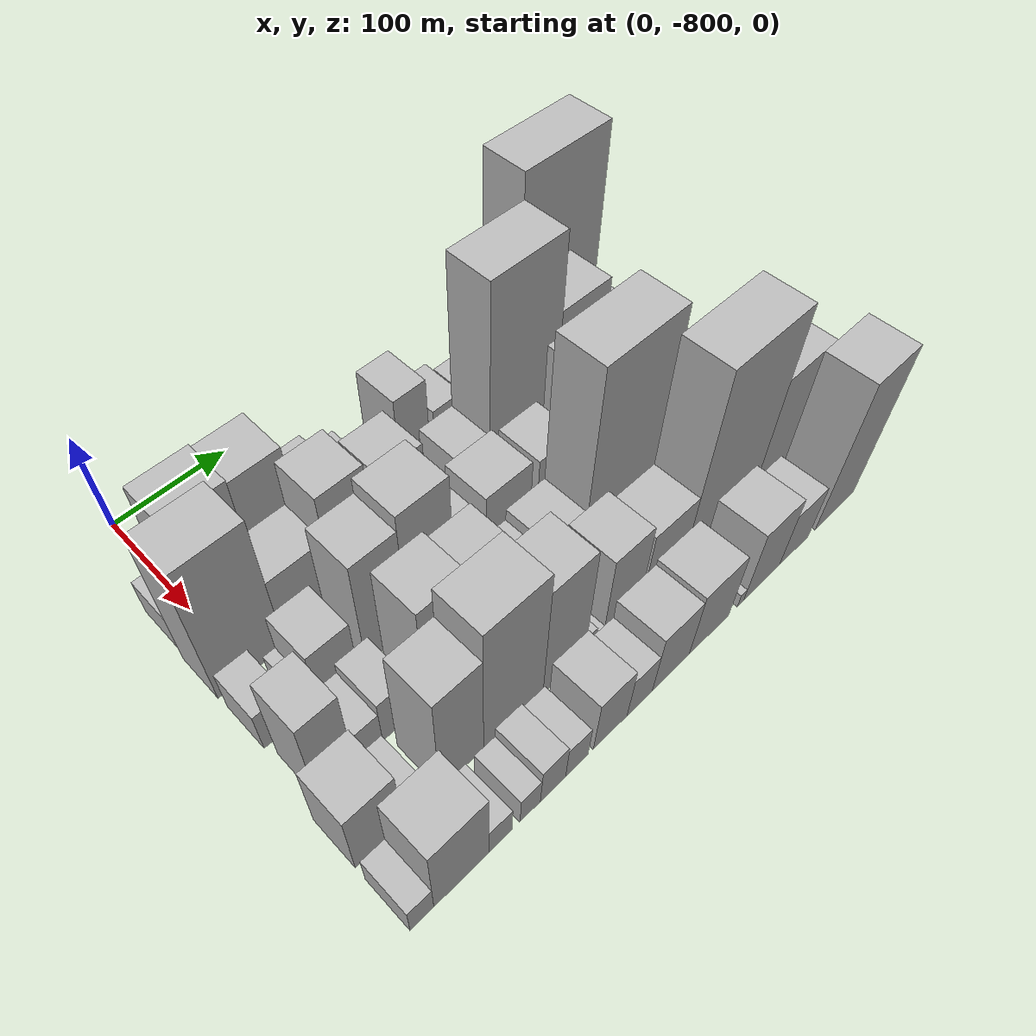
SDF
<sdf version="1.6">
 <world name="default">
  <model name="building_1">
   <static>1</static>
   <pose>100.0000 -812.2240 0 0.000000 0.000000 0.000000</pose>
   <link name="link">
    <pose>0 0 19.50 0 0 0</pose>
    <collision name="collision"><geometry><box><size>40.0000 21.5519 39.0000</size></box></geometry></collision>
    <visual name="visual">
     <cast_shadows>0</cast_shadows>
     <geometry><box><size>40.0000 21.5519 39.0000</size></box></geometry>
     <material>
      <script>
       <uri>model://HANNAS_wall/materials/scripts</uri>
       <uri>model://HANNAS_wall/materials/textures</uri>
       <name>vrc/HANNAS_wall</name>
      </script>
     </material>
    </visual>
   </link>
  </model>
  <model name="building_2">
   <static>1</static>
   <pose>100.0000 -777.5045 0 0.000000 0.000000 0.000000</pose>
   <link name="link">
    <pose>0 0 63.00 0 0 0</pose>
    <collision name="collision"><geometry><box><size>40.0000 47.8872 126.0000</size></box></geometry></collision>
    <visual name="visual">
     <cast_shadows>0</cast_shadows>
     <geometry><box><size>40.0000 47.8872 126.0000</size></box></geometry>
     <material>
      <script>
       <uri>model://HANNAS_wall/materials/scripts</uri>
       <uri>model://HANNAS_wall/materials/textures</uri>
       <name>vrc/HANNAS_wall</name>
      </script>
     </material>
    </visual>
   </link>
  </model>
  <model name="building_3">
   <static>1</static>
   <pose>100.0000 -732.9101 0 0.000000 0.000000 0.000000</pose>
   <link name="link">
    <pose>0 0 61.50 0 0 0</pose>
    <collision name="collision"><geometry><box><size>40.0000 41.3015 123.0000</size></box></geometry></collision>
    <visual name="visual">
     <cast_shadows>0</cast_shadows>
     <geometry><box><size>40.0000 41.3015 123.0000</size></box></geometry>
     <material>
      <script>
       <uri>model://HANNAS_wall/materials/scripts</uri>
       <uri>model://HANNAS_wall/materials/textures</uri>
       <name>vrc/HANNAS_wall</name>
      </script>
     </material>
    </visual>
   </link>
  </model>
  <model name="building_4">
   <static>1</static>
   <pose>100.0000 -693.9835 0 0.000000 0.000000 0.000000</pose>
   <link name="link">
    <pose>0 0 34.50 0 0 0</pose>
    <collision name="collision"><geometry><box><size>40.0000 36.5518 69.0000</size></box></geometry></collision>
    <visual name="visual">
     <cast_shadows>0</cast_shadows>
     <geometry><box><size>40.0000 36.5518 69.0000</size></box></geometry>
     <material>
      <script>
       <uri>model://HANNAS_wall/materials/scripts</uri>
       <uri>model://HANNAS_wall/materials/textures</uri>
       <name>vrc/HANNAS_wall</name>
      </script>
     </material>
    </visual>
   </link>
  </model>
  <model name="building_5">
   <static>1</static>
   <pose>100.0000 -662.1892 0 0.000000 0.000000 0.000000</pose>
   <link name="link">
    <pose>0 0 25.50 0 0 0</pose>
    <collision name="collision"><geometry><box><size>40.0000 27.0368 51.0000</size></box></geometry></collision>
    <visual name="visual">
     <cast_shadows>0</cast_shadows>
     <geometry><box><size>40.0000 27.0368 51.0000</size></box></geometry>
     <material>
      <script>
       <uri>model://HANNAS_wall/materials/scripts</uri>
       <uri>model://HANNAS_wall/materials/textures</uri>
       <name>vrc/HANNAS_wall</name>
      </script>
     </material>
    </visual>
   </link>
  </model>
  <model name="building_6">
   <static>1</static>
   <pose>100.0000 -629.9079 0 0.000000 0.000000 0.000000</pose>
   <link name="link">
    <pose>0 0 15.00 0 0 0</pose>
    <collision name="collision"><geometry><box><size>40.0000 17.5258 30.0000</size></box></geometry></collision>
    <visual name="visual">
     <cast_shadows>0</cast_shadows>
     <geometry><box><size>40.0000 17.5258 30.0000</size></box></geometry>
     <material>
      <script>
       <uri>model://HANNAS_wall/materials/scripts</uri>
       <uri>model://HANNAS_wall/materials/textures</uri>
       <name>vrc/HANNAS_wall</name>
      </script>
     </material>
    </visual>
   </link>
  </model>
  <model name="building_7">
   <static>1</static>
   <pose>100.0000 -606.0074 0 0.000000 0.000000 0.000000</pose>
   <link name="link">
    <pose>0 0 46.50 0 0 0</pose>
    <collision name="collision"><geometry><box><size>40.0000 30.2752 93.0000</size></box></geometry></collision>
    <visual name="visual">
     <cast_shadows>0</cast_shadows>
     <geometry><box><size>40.0000 30.2752 93.0000</size></box></geometry>
     <material>
      <script>
       <uri>model://HANNAS_wall/materials/scripts</uri>
       <uri>model://HANNAS_wall/materials/textures</uri>
       <name>vrc/HANNAS_wall</name>
      </script>
     </material>
    </visual>
   </link>
  </model>
  <model name="building_8">
   <static>1</static>
   <pose>100.0000 -571.5344 0 0.000000 0.000000 0.000000</pose>
   <link name="link">
    <pose>0 0 27.00 0 0 0</pose>
    <collision name="collision"><geometry><box><size>40.0000 28.6708 54.0000</size></box></geometry></collision>
    <visual name="visual">
     <cast_shadows>0</cast_shadows>
     <geometry><box><size>40.0000 28.6708 54.0000</size></box></geometry>
     <material>
      <script>
       <uri>model://HANNAS_wall/materials/scripts</uri>
       <uri>model://HANNAS_wall/materials/textures</uri>
       <name>vrc/HANNAS_wall</name>
      </script>
     </material>
    </visual>
   </link>
  </model>
  <model name="building_9">
   <static>1</static>
   <pose>100.0000 -538.3855 0 0.000000 0.000000 0.000000</pose>
   <link name="link">
    <pose>0 0 21.00 0 0 0</pose>
    <collision name="collision"><geometry><box><size>40.0000 21.6271 42.0000</size></box></geometry></collision>
    <visual name="visual">
     <cast_shadows>0</cast_shadows>
     <geometry><box><size>40.0000 21.6271 42.0000</size></box></geometry>
     <material>
      <script>
       <uri>model://HANNAS_wall/materials/scripts</uri>
       <uri>model://HANNAS_wall/materials/textures</uri>
       <name>vrc/HANNAS_wall</name>
      </script>
     </material>
    </visual>
   </link>
  </model>
  <model name="building_10">
   <static>1</static>
   <pose>100.0000 -518.0808 0 0.000000 0.000000 0.000000</pose>
   <link name="link">
    <pose>0 0 7.50 0 0 0</pose>
    <collision name="collision"><geometry><box><size>40.0000 6.9822 15.0000</size></box></geometry></collision>
    <visual name="visual">
     <cast_shadows>0</cast_shadows>
     <geometry><box><size>40.0000 6.9822 15.0000</size></box></geometry>
     <material>
      <script>
       <uri>model://HANNAS_wall/materials/scripts</uri>
       <uri>model://HANNAS_wall/materials/textures</uri>
       <name>vrc/HANNAS_wall</name>
      </script>
     </material>
    </visual>
   </link>
  </model>
  <model name="building_11">
   <static>1</static>
   <pose>100.0000 -505.0342 0 0.000000 0.000000 0.000000</pose>
   <link name="link">
    <pose>0 0 16.50 0 0 0</pose>
    <collision name="collision"><geometry><box><size>40.0000 19.1111 33.0000</size></box></geometry></collision>
    <visual name="visual">
     <cast_shadows>0</cast_shadows>
     <geometry><box><size>40.0000 19.1111 33.0000</size></box></geometry>
     <material>
      <script>
       <uri>model://HANNAS_wall/materials/scripts</uri>
       <uri>model://HANNAS_wall/materials/textures</uri>
       <name>vrc/HANNAS_wall</name>
      </script>
     </material>
    </visual>
   </link>
  </model>
  <model name="building_12">
   <static>1</static>
   <pose>100.0000 -453.3071 0 0.000000 0.000000 0.000000</pose>
   <link name="link">
    <pose>0 0 109.50 0 0 0</pose>
    <collision name="collision"><geometry><box><size>40.0000 84.3429 219.0000</size></box></geometry></collision>
    <visual name="visual">
     <cast_shadows>0</cast_shadows>
     <geometry><box><size>40.0000 84.3429 219.0000</size></box></geometry>
     <material>
      <script>
       <uri>model://HANNAS_wall/materials/scripts</uri>
       <uri>model://HANNAS_wall/materials/textures</uri>
       <name>vrc/HANNAS_wall</name>
      </script>
     </material>
    </visual>
   </link>
  </model>
  <model name="building_13">
   <static>1</static>
   <pose>100.0000 -399.4121 0 0.000000 0.000000 0.000000</pose>
   <link name="link">
    <pose>0 0 21.00 0 0 0</pose>
    <collision name="collision"><geometry><box><size>40.0000 23.4472 42.0000</size></box></geometry></collision>
    <visual name="visual">
     <cast_shadows>0</cast_shadows>
     <geometry><box><size>40.0000 23.4472 42.0000</size></box></geometry>
     <material>
      <script>
       <uri>model://HANNAS_wall/materials/scripts</uri>
       <uri>model://HANNAS_wall/materials/textures</uri>
       <name>vrc/HANNAS_wall</name>
      </script>
     </material>
    </visual>
   </link>
  </model>
  <model name="building_47">
   <static>1</static>
   <pose>149.0000 -797.3825 0 0.000000 0.000000 0.000000</pose>
   <link name="link">
    <pose>0 0 75.00 0 0 0</pose>
    <collision name="collision"><geometry><box><size>40.0000 55.2350 150.0000</size></box></geometry></collision>
    <visual name="visual">
     <cast_shadows>0</cast_shadows>
     <geometry><box><size>40.0000 55.2350 150.0000</size></box></geometry>
     <material>
      <script>
       <uri>model://HANNAS_wall/materials/scripts</uri>
       <uri>model://HANNAS_wall/materials/textures</uri>
       <name>vrc/HANNAS_wall</name>
      </script>
     </material>
    </visual>
   </link>
  </model>
  <model name="building_48">
   <static>1</static>
   <pose>149.0000 -746.6965 0 0.000000 0.000000 0.000000</pose>
   <link name="link">
    <pose>0 0 40.50 0 0 0</pose>
    <collision name="collision"><geometry><box><size>40.0000 46.1370 81.0000</size></box></geometry></collision>
    <visual name="visual">
     <cast_shadows>0</cast_shadows>
     <geometry><box><size>40.0000 46.1370 81.0000</size></box></geometry>
     <material>
      <script>
       <uri>model://HANNAS_wall/materials/scripts</uri>
       <uri>model://HANNAS_wall/materials/textures</uri>
       <name>vrc/HANNAS_wall</name>
      </script>
     </material>
    </visual>
   </link>
  </model>
  <model name="building_49">
   <static>1</static>
   <pose>149.0000 -704.4739 0 0.000000 0.000000 0.000000</pose>
   <link name="link">
    <pose>0 0 63.00 0 0 0</pose>
    <collision name="collision"><geometry><box><size>40.0000 38.3083 126.0000</size></box></geometry></collision>
    <visual name="visual">
     <cast_shadows>0</cast_shadows>
     <geometry><box><size>40.0000 38.3083 126.0000</size></box></geometry>
     <material>
      <script>
       <uri>model://HANNAS_wall/materials/scripts</uri>
       <uri>model://HANNAS_wall/materials/textures</uri>
       <name>vrc/HANNAS_wall</name>
      </script>
     </material>
    </visual>
   </link>
  </model>
  <model name="building_50">
   <static>1</static>
   <pose>149.0000 -656.1858 0 0.000000 0.000000 0.000000</pose>
   <link name="link">
    <pose>0 0 52.50 0 0 0</pose>
    <collision name="collision"><geometry><box><size>40.0000 38.2681 105.0000</size></box></geometry></collision>
    <visual name="visual">
     <cast_shadows>0</cast_shadows>
     <geometry><box><size>40.0000 38.2681 105.0000</size></box></geometry>
     <material>
      <script>
       <uri>model://HANNAS_wall/materials/scripts</uri>
       <uri>model://HANNAS_wall/materials/textures</uri>
       <name>vrc/HANNAS_wall</name>
      </script>
     </material>
    </visual>
   </link>
  </model>
  <model name="building_51">
   <static>1</static>
   <pose>149.0000 -631.1028 0 0.000000 0.000000 0.000000</pose>
   <link name="link">
    <pose>0 0 13.50 0 0 0</pose>
    <collision name="collision"><geometry><box><size>40.0000 11.8977 27.0000</size></box></geometry></collision>
    <visual name="visual">
     <cast_shadows>0</cast_shadows>
     <geometry><box><size>40.0000 11.8977 27.0000</size></box></geometry>
     <material>
      <script>
       <uri>model://HANNAS_wall/materials/scripts</uri>
       <uri>model://HANNAS_wall/materials/textures</uri>
       <name>vrc/HANNAS_wall</name>
      </script>
     </material>
    </visual>
   </link>
  </model>
  <model name="building_52">
   <static>1</static>
   <pose>149.0000 -612.2972 0 0.000000 0.000000 0.000000</pose>
   <link name="link">
    <pose>0 0 12.00 0 0 0</pose>
    <collision name="collision"><geometry><box><size>40.0000 9.7136 24.0000</size></box></geometry></collision>
    <visual name="visual">
     <cast_shadows>0</cast_shadows>
     <geometry><box><size>40.0000 9.7136 24.0000</size></box></geometry>
     <material>
      <script>
       <uri>model://HANNAS_wall/materials/scripts</uri>
       <uri>model://HANNAS_wall/materials/textures</uri>
       <name>vrc/HANNAS_wall</name>
      </script>
     </material>
    </visual>
   </link>
  </model>
  <model name="building_53">
   <static>1</static>
   <pose>149.0000 -591.1544 0 0.000000 0.000000 0.000000</pose>
   <link name="link">
    <pose>0 0 30.00 0 0 0</pose>
    <collision name="collision"><geometry><box><size>40.0000 32.5719 60.0000</size></box></geometry></collision>
    <visual name="visual">
     <cast_shadows>0</cast_shadows>
     <geometry><box><size>40.0000 32.5719 60.0000</size></box></geometry>
     <material>
      <script>
       <uri>model://HANNAS_wall/materials/scripts</uri>
       <uri>model://HANNAS_wall/materials/textures</uri>
       <name>vrc/HANNAS_wall</name>
      </script>
     </material>
    </visual>
   </link>
  </model>
  <model name="building_54">
   <static>1</static>
   <pose>149.0000 -539.8538 0 0.000000 0.000000 0.000000</pose>
   <link name="link">
    <pose>0 0 103.50 0 0 0</pose>
    <collision name="collision"><geometry><box><size>40.0000 70.0292 207.0000</size></box></geometry></collision>
    <visual name="visual">
     <cast_shadows>0</cast_shadows>
     <geometry><box><size>40.0000 70.0292 207.0000</size></box></geometry>
     <material>
      <script>
       <uri>model://HANNAS_wall/materials/scripts</uri>
       <uri>model://HANNAS_wall/materials/textures</uri>
       <name>vrc/HANNAS_wall</name>
      </script>
     </material>
    </visual>
   </link>
  </model>
  <model name="building_55">
   <static>1</static>
   <pose>149.0000 -479.6750 0 0.000000 0.000000 0.000000</pose>
   <link name="link">
    <pose>0 0 67.50 0 0 0</pose>
    <collision name="collision"><geometry><box><size>40.0000 50.3284 135.0000</size></box></geometry></collision>
    <visual name="visual">
     <cast_shadows>0</cast_shadows>
     <geometry><box><size>40.0000 50.3284 135.0000</size></box></geometry>
     <material>
      <script>
       <uri>model://HANNAS_wall/materials/scripts</uri>
       <uri>model://HANNAS_wall/materials/textures</uri>
       <name>vrc/HANNAS_wall</name>
      </script>
     </material>
    </visual>
   </link>
  </model>
  <model name="building_56">
   <static>1</static>
   <pose>149.0000 -429.7371 0 0.000000 0.000000 0.000000</pose>
   <link name="link">
    <pose>0 0 37.50 0 0 0</pose>
    <collision name="collision"><geometry><box><size>40.0000 41.5474 75.0000</size></box></geometry></collision>
    <visual name="visual">
     <cast_shadows>0</cast_shadows>
     <geometry><box><size>40.0000 41.5474 75.0000</size></box></geometry>
     <material>
      <script>
       <uri>model://HANNAS_wall/materials/scripts</uri>
       <uri>model://HANNAS_wall/materials/textures</uri>
       <name>vrc/HANNAS_wall</name>
      </script>
     </material>
    </visual>
   </link>
  </model>
  <model name="building_98">
   <static>1</static>
   <pose>198.0000 -811.1327 0 0.000000 0.000000 0.000000</pose>
   <link name="link">
    <pose>0 0 22.50 0 0 0</pose>
    <collision name="collision"><geometry><box><size>40.0000 25.7346 45.0000</size></box></geometry></collision>
    <visual name="visual">
     <cast_shadows>0</cast_shadows>
     <geometry><box><size>40.0000 25.7346 45.0000</size></box></geometry>
     <material>
      <script>
       <uri>model://HANNAS_wall/materials/scripts</uri>
       <uri>model://HANNAS_wall/materials/textures</uri>
       <name>vrc/HANNAS_wall</name>
      </script>
     </material>
    </visual>
   </link>
  </model>
  <model name="building_99">
   <static>1</static>
   <pose>198.0000 -785.2999 0 0.000000 0.000000 0.000000</pose>
   <link name="link">
    <pose>0 0 12.00 0 0 0</pose>
    <collision name="collision"><geometry><box><size>40.0000 9.9310 24.0000</size></box></geometry></collision>
    <visual name="visual">
     <cast_shadows>0</cast_shadows>
     <geometry><box><size>40.0000 9.9310 24.0000</size></box></geometry>
     <material>
      <script>
       <uri>model://HANNAS_wall/materials/scripts</uri>
       <uri>model://HANNAS_wall/materials/textures</uri>
       <name>vrc/HANNAS_wall</name>
      </script>
     </material>
    </visual>
   </link>
  </model>
  <model name="building_100">
   <static>1</static>
   <pose>198.0000 -763.0754 0 0.000000 0.000000 0.000000</pose>
   <link name="link">
    <pose>0 0 31.50 0 0 0</pose>
    <collision name="collision"><geometry><box><size>40.0000 34.5180 63.0000</size></box></geometry></collision>
    <visual name="visual">
     <cast_shadows>0</cast_shadows>
     <geometry><box><size>40.0000 34.5180 63.0000</size></box></geometry>
     <material>
      <script>
       <uri>model://HANNAS_wall/materials/scripts</uri>
       <uri>model://HANNAS_wall/materials/textures</uri>
       <name>vrc/HANNAS_wall</name>
      </script>
     </material>
    </visual>
   </link>
  </model>
  <model name="building_101">
   <static>1</static>
   <pose>198.0000 -719.9070 0 0.000000 0.000000 0.000000</pose>
   <link name="link">
    <pose>0 0 60.00 0 0 0</pose>
    <collision name="collision"><geometry><box><size>40.0000 37.8187 120.0000</size></box></geometry></collision>
    <visual name="visual">
     <cast_shadows>0</cast_shadows>
     <geometry><box><size>40.0000 37.8187 120.0000</size></box></geometry>
     <material>
      <script>
       <uri>model://HANNAS_wall/materials/scripts</uri>
       <uri>model://HANNAS_wall/materials/textures</uri>
       <name>vrc/HANNAS_wall</name>
      </script>
     </material>
    </visual>
   </link>
  </model>
  <model name="building_102">
   <static>1</static>
   <pose>198.0000 -679.1900 0 0.000000 0.000000 0.000000</pose>
   <link name="link">
    <pose>0 0 67.50 0 0 0</pose>
    <collision name="collision"><geometry><box><size>40.0000 43.6154 135.0000</size></box></geometry></collision>
    <visual name="visual">
     <cast_shadows>0</cast_shadows>
     <geometry><box><size>40.0000 43.6154 135.0000</size></box></geometry>
     <material>
      <script>
       <uri>model://HANNAS_wall/materials/scripts</uri>
       <uri>model://HANNAS_wall/materials/textures</uri>
       <name>vrc/HANNAS_wall</name>
      </script>
     </material>
    </visual>
   </link>
  </model>
  <model name="building_103">
   <static>1</static>
   <pose>198.0000 -641.9225 0 0.000000 0.000000 0.000000</pose>
   <link name="link">
    <pose>0 0 30.00 0 0 0</pose>
    <collision name="collision"><geometry><box><size>40.0000 30.9196 60.0000</size></box></geometry></collision>
    <visual name="visual">
     <cast_shadows>0</cast_shadows>
     <geometry><box><size>40.0000 30.9196 60.0000</size></box></geometry>
     <material>
      <script>
       <uri>model://HANNAS_wall/materials/scripts</uri>
       <uri>model://HANNAS_wall/materials/textures</uri>
       <name>vrc/HANNAS_wall</name>
      </script>
     </material>
    </visual>
   </link>
  </model>
  <model name="building_104">
   <static>1</static>
   <pose>198.0000 -604.2804 0 0.000000 0.000000 0.000000</pose>
   <link name="link">
    <pose>0 0 40.50 0 0 0</pose>
    <collision name="collision"><geometry><box><size>40.0000 44.3646 81.0000</size></box></geometry></collision>
    <visual name="visual">
     <cast_shadows>0</cast_shadows>
     <geometry><box><size>40.0000 44.3646 81.0000</size></box></geometry>
     <material>
      <script>
       <uri>model://HANNAS_wall/materials/scripts</uri>
       <uri>model://HANNAS_wall/materials/textures</uri>
       <name>vrc/HANNAS_wall</name>
      </script>
     </material>
    </visual>
   </link>
  </model>
  <model name="building_105">
   <static>1</static>
   <pose>198.0000 -556.1057 0 0.000000 0.000000 0.000000</pose>
   <link name="link">
    <pose>0 0 37.50 0 0 0</pose>
    <collision name="collision"><geometry><box><size>40.0000 37.9849 75.0000</size></box></geometry></collision>
    <visual name="visual">
     <cast_shadows>0</cast_shadows>
     <geometry><box><size>40.0000 37.9849 75.0000</size></box></geometry>
     <material>
      <script>
       <uri>model://HANNAS_wall/materials/scripts</uri>
       <uri>model://HANNAS_wall/materials/textures</uri>
       <name>vrc/HANNAS_wall</name>
      </script>
     </material>
    </visual>
   </link>
  </model>
  <model name="building_106">
   <static>1</static>
   <pose>198.0000 -509.8618 0 0.000000 0.000000 0.000000</pose>
   <link name="link">
    <pose>0 0 63.00 0 0 0</pose>
    <collision name="collision"><geometry><box><size>40.0000 38.5027 126.0000</size></box></geometry></collision>
    <visual name="visual">
     <cast_shadows>0</cast_shadows>
     <geometry><box><size>40.0000 38.5027 126.0000</size></box></geometry>
     <material>
      <script>
       <uri>model://HANNAS_wall/materials/scripts</uri>
       <uri>model://HANNAS_wall/materials/textures</uri>
       <name>vrc/HANNAS_wall</name>
      </script>
     </material>
    </visual>
   </link>
  </model>
  <model name="building_107">
   <static>1</static>
   <pose>198.0000 -467.3563 0 0.000000 0.000000 0.000000</pose>
   <link name="link">
    <pose>0 0 43.50 0 0 0</pose>
    <collision name="collision"><geometry><box><size>40.0000 46.5084 87.0000</size></box></geometry></collision>
    <visual name="visual">
     <cast_shadows>0</cast_shadows>
     <geometry><box><size>40.0000 46.5084 87.0000</size></box></geometry>
     <material>
      <script>
       <uri>model://HANNAS_wall/materials/scripts</uri>
       <uri>model://HANNAS_wall/materials/textures</uri>
       <name>vrc/HANNAS_wall</name>
      </script>
     </material>
    </visual>
   </link>
  </model>
  <model name="building_108">
   <static>1</static>
   <pose>198.0000 -433.2044 0 0.000000 0.000000 0.000000</pose>
   <link name="link">
    <pose>0 0 19.50 0 0 0</pose>
    <collision name="collision"><geometry><box><size>40.0000 21.7954 39.0000</size></box></geometry></collision>
    <visual name="visual">
     <cast_shadows>0</cast_shadows>
     <geometry><box><size>40.0000 21.7954 39.0000</size></box></geometry>
     <material>
      <script>
       <uri>model://HANNAS_wall/materials/scripts</uri>
       <uri>model://HANNAS_wall/materials/textures</uri>
       <name>vrc/HANNAS_wall</name>
      </script>
     </material>
    </visual>
   </link>
  </model>
  <model name="building_109">
   <static>1</static>
   <pose>198.0000 -403.9069 0 0.000000 0.000000 0.000000</pose>
   <link name="link">
    <pose>0 0 30.00 0 0 0</pose>
    <collision name="collision"><geometry><box><size>40.0000 30.7995 60.0000</size></box></geometry></collision>
    <visual name="visual">
     <cast_shadows>0</cast_shadows>
     <geometry><box><size>40.0000 30.7995 60.0000</size></box></geometry>
     <material>
      <script>
       <uri>model://HANNAS_wall/materials/scripts</uri>
       <uri>model://HANNAS_wall/materials/textures</uri>
       <name>vrc/HANNAS_wall</name>
      </script>
     </material>
    </visual>
   </link>
  </model>
  <model name="building_145">
   <static>1</static>
   <pose>247.0000 -804.7592 0 0.000000 0.000000 0.000000</pose>
   <link name="link">
    <pose>0 0 49.50 0 0 0</pose>
    <collision name="collision"><geometry><box><size>40.0000 30.4817 99.0000</size></box></geometry></collision>
    <visual name="visual">
     <cast_shadows>0</cast_shadows>
     <geometry><box><size>40.0000 30.4817 99.0000</size></box></geometry>
     <material>
      <script>
       <uri>model://HANNAS_wall/materials/scripts</uri>
       <uri>model://HANNAS_wall/materials/textures</uri>
       <name>vrc/HANNAS_wall</name>
      </script>
     </material>
    </visual>
   </link>
  </model>
  <model name="building_146">
   <static>1</static>
   <pose>247.0000 -777.9639 0 0.000000 0.000000 0.000000</pose>
   <link name="link">
    <pose>0 0 19.50 0 0 0</pose>
    <collision name="collision"><geometry><box><size>40.0000 23.1088 39.0000</size></box></geometry></collision>
    <visual name="visual">
     <cast_shadows>0</cast_shadows>
     <geometry><box><size>40.0000 23.1088 39.0000</size></box></geometry>
     <material>
      <script>
       <uri>model://HANNAS_wall/materials/scripts</uri>
       <uri>model://HANNAS_wall/materials/textures</uri>
       <name>vrc/HANNAS_wall</name>
      </script>
     </material>
    </visual>
   </link>
  </model>
  <model name="building_147">
   <static>1</static>
   <pose>247.0000 -753.0437 0 0.000000 0.000000 0.000000</pose>
   <link name="link">
    <pose>0 0 25.50 0 0 0</pose>
    <collision name="collision"><geometry><box><size>40.0000 26.7316 51.0000</size></box></geometry></collision>
    <visual name="visual">
     <cast_shadows>0</cast_shadows>
     <geometry><box><size>40.0000 26.7316 51.0000</size></box></geometry>
     <material>
      <script>
       <uri>model://HANNAS_wall/materials/scripts</uri>
       <uri>model://HANNAS_wall/materials/textures</uri>
       <name>vrc/HANNAS_wall</name>
      </script>
     </material>
    </visual>
   </link>
  </model>
  <model name="building_148">
   <static>1</static>
   <pose>247.0000 -709.0042 0 0.000000 0.000000 0.000000</pose>
   <link name="link">
    <pose>0 0 58.50 0 0 0</pose>
    <collision name="collision"><geometry><box><size>40.0000 41.3473 117.0000</size></box></geometry></collision>
    <visual name="visual">
     <cast_shadows>0</cast_shadows>
     <geometry><box><size>40.0000 41.3473 117.0000</size></box></geometry>
     <material>
      <script>
       <uri>model://HANNAS_wall/materials/scripts</uri>
       <uri>model://HANNAS_wall/materials/textures</uri>
       <name>vrc/HANNAS_wall</name>
      </script>
     </material>
    </visual>
   </link>
  </model>
  <model name="building_149">
   <static>1</static>
   <pose>247.0000 -668.5971 0 0.000000 0.000000 0.000000</pose>
   <link name="link">
    <pose>0 0 54.00 0 0 0</pose>
    <collision name="collision"><geometry><box><size>40.0000 39.4669 108.0000</size></box></geometry></collision>
    <visual name="visual">
     <cast_shadows>0</cast_shadows>
     <geometry><box><size>40.0000 39.4669 108.0000</size></box></geometry>
     <material>
      <script>
       <uri>model://HANNAS_wall/materials/scripts</uri>
       <uri>model://HANNAS_wall/materials/textures</uri>
       <name>vrc/HANNAS_wall</name>
      </script>
     </material>
    </visual>
   </link>
  </model>
  <model name="building_150">
   <static>1</static>
   <pose>247.0000 -632.7368 0 0.000000 0.000000 0.000000</pose>
   <link name="link">
    <pose>0 0 28.50 0 0 0</pose>
    <collision name="collision"><geometry><box><size>40.0000 32.2539 57.0000</size></box></geometry></collision>
    <visual name="visual">
     <cast_shadows>0</cast_shadows>
     <geometry><box><size>40.0000 32.2539 57.0000</size></box></geometry>
     <material>
      <script>
       <uri>model://HANNAS_wall/materials/scripts</uri>
       <uri>model://HANNAS_wall/materials/textures</uri>
       <name>vrc/HANNAS_wall</name>
      </script>
     </material>
    </visual>
   </link>
  </model>
  <model name="building_151">
   <static>1</static>
   <pose>247.0000 -597.9338 0 0.000000 0.000000 0.000000</pose>
   <link name="link">
    <pose>0 0 34.50 0 0 0</pose>
    <collision name="collision"><geometry><box><size>40.0000 37.3521 69.0000</size></box></geometry></collision>
    <visual name="visual">
     <cast_shadows>0</cast_shadows>
     <geometry><box><size>40.0000 37.3521 69.0000</size></box></geometry>
     <material>
      <script>
       <uri>model://HANNAS_wall/materials/scripts</uri>
       <uri>model://HANNAS_wall/materials/textures</uri>
       <name>vrc/HANNAS_wall</name>
      </script>
     </material>
    </visual>
   </link>
  </model>
  <model name="building_152">
   <static>1</static>
   <pose>247.0000 -541.8616 0 0.000000 0.000000 0.000000</pose>
   <link name="link">
    <pose>0 0 105.00 0 0 0</pose>
    <collision name="collision"><geometry><box><size>40.0000 74.7923 210.0000</size></box></geometry></collision>
    <visual name="visual">
     <cast_shadows>0</cast_shadows>
     <geometry><box><size>40.0000 74.7923 210.0000</size></box></geometry>
     <material>
      <script>
       <uri>model://HANNAS_wall/materials/scripts</uri>
       <uri>model://HANNAS_wall/materials/textures</uri>
       <name>vrc/HANNAS_wall</name>
      </script>
     </material>
    </visual>
   </link>
  </model>
  <model name="building_153">
   <static>1</static>
   <pose>247.0000 -493.1549 0 0.000000 0.000000 0.000000</pose>
   <link name="link">
    <pose>0 0 21.00 0 0 0</pose>
    <collision name="collision"><geometry><box><size>40.0000 22.6212 42.0000</size></box></geometry></collision>
    <visual name="visual">
     <cast_shadows>0</cast_shadows>
     <geometry><box><size>40.0000 22.6212 42.0000</size></box></geometry>
     <material>
      <script>
       <uri>model://HANNAS_wall/materials/scripts</uri>
       <uri>model://HANNAS_wall/materials/textures</uri>
       <name>vrc/HANNAS_wall</name>
      </script>
     </material>
    </visual>
   </link>
  </model>
  <model name="building_154">
   <static>1</static>
   <pose>247.0000 -467.3923 0 0.000000 0.000000 0.000000</pose>
   <link name="link">
    <pose>0 0 27.00 0 0 0</pose>
    <collision name="collision"><geometry><box><size>40.0000 28.9039 54.0000</size></box></geometry></collision>
    <visual name="visual">
     <cast_shadows>0</cast_shadows>
     <geometry><box><size>40.0000 28.9039 54.0000</size></box></geometry>
     <material>
      <script>
       <uri>model://HANNAS_wall/materials/scripts</uri>
       <uri>model://HANNAS_wall/materials/textures</uri>
       <name>vrc/HANNAS_wall</name>
      </script>
     </material>
    </visual>
   </link>
  </model>
  <model name="building_155">
   <static>1</static>
   <pose>247.0000 -430.9573 0 0.000000 0.000000 0.000000</pose>
   <link name="link">
    <pose>0 0 37.50 0 0 0</pose>
    <collision name="collision"><geometry><box><size>40.0000 43.9662 75.0000</size></box></geometry></collision>
    <visual name="visual">
     <cast_shadows>0</cast_shadows>
     <geometry><box><size>40.0000 43.9662 75.0000</size></box></geometry>
     <material>
      <script>
       <uri>model://HANNAS_wall/materials/scripts</uri>
       <uri>model://HANNAS_wall/materials/textures</uri>
       <name>vrc/HANNAS_wall</name>
      </script>
     </material>
    </visual>
   </link>
  </model>
  <model name="building_156">
   <static>1</static>
   <pose>247.0000 -404.2575 0 0.000000 0.000000 0.000000</pose>
   <link name="link">
    <pose>0 0 10.50 0 0 0</pose>
    <collision name="collision"><geometry><box><size>40.0000 9.4333 21.0000</size></box></geometry></collision>
    <visual name="visual">
     <cast_shadows>0</cast_shadows>
     <geometry><box><size>40.0000 9.4333 21.0000</size></box></geometry>
     <material>
      <script>
       <uri>model://HANNAS_wall/materials/scripts</uri>
       <uri>model://HANNAS_wall/materials/textures</uri>
       <name>vrc/HANNAS_wall</name>
      </script>
     </material>
    </visual>
   </link>
  </model>
  <model name="building_190">
   <static>1</static>
   <pose>296.0000 -811.2044 0 0.000000 0.000000 0.000000</pose>
   <link name="link">
    <pose>0 0 37.50 0 0 0</pose>
    <collision name="collision"><geometry><box><size>40.0000 37.5912 75.0000</size></box></geometry></collision>
    <visual name="visual">
     <cast_shadows>0</cast_shadows>
     <geometry><box><size>40.0000 37.5912 75.0000</size></box></geometry>
     <material>
      <script>
       <uri>model://HANNAS_wall/materials/scripts</uri>
       <uri>model://HANNAS_wall/materials/textures</uri>
       <name>vrc/HANNAS_wall</name>
      </script>
     </material>
    </visual>
   </link>
  </model>
  <model name="building_191">
   <static>1</static>
   <pose>296.0000 -780.1075 0 0.000000 0.000000 0.000000</pose>
   <link name="link">
    <pose>0 0 16.50 0 0 0</pose>
    <collision name="collision"><geometry><box><size>40.0000 16.6026 33.0000</size></box></geometry></collision>
    <visual name="visual">
     <cast_shadows>0</cast_shadows>
     <geometry><box><size>40.0000 16.6026 33.0000</size></box></geometry>
     <material>
      <script>
       <uri>model://HANNAS_wall/materials/scripts</uri>
       <uri>model://HANNAS_wall/materials/textures</uri>
       <name>vrc/HANNAS_wall</name>
      </script>
     </material>
    </visual>
   </link>
  </model>
  <model name="building_192">
   <static>1</static>
   <pose>296.0000 -742.8204 0 0.000000 0.000000 0.000000</pose>
   <link name="link">
    <pose>0 0 60.00 0 0 0</pose>
    <collision name="collision"><geometry><box><size>40.0000 37.9716 120.0000</size></box></geometry></collision>
    <visual name="visual">
     <cast_shadows>0</cast_shadows>
     <geometry><box><size>40.0000 37.9716 120.0000</size></box></geometry>
     <material>
      <script>
       <uri>model://HANNAS_wall/materials/scripts</uri>
       <uri>model://HANNAS_wall/materials/textures</uri>
       <name>vrc/HANNAS_wall</name>
      </script>
     </material>
    </visual>
   </link>
  </model>
  <model name="building_193">
   <static>1</static>
   <pose>296.0000 -696.5850 0 0.000000 0.000000 0.000000</pose>
   <link name="link">
    <pose>0 0 75.00 0 0 0</pose>
    <collision name="collision"><geometry><box><size>40.0000 54.4991 150.0000</size></box></geometry></collision>
    <visual name="visual">
     <cast_shadows>0</cast_shadows>
     <geometry><box><size>40.0000 54.4991 150.0000</size></box></geometry>
     <material>
      <script>
       <uri>model://HANNAS_wall/materials/scripts</uri>
       <uri>model://HANNAS_wall/materials/textures</uri>
       <name>vrc/HANNAS_wall</name>
      </script>
     </material>
    </visual>
   </link>
  </model>
  <model name="building_194">
   <static>1</static>
   <pose>296.0000 -649.1911 0 0.000000 0.000000 0.000000</pose>
   <link name="link">
    <pose>0 0 64.50 0 0 0</pose>
    <collision name="collision"><geometry><box><size>40.0000 40.2888 129.0000</size></box></geometry></collision>
    <visual name="visual">
     <cast_shadows>0</cast_shadows>
     <geometry><box><size>40.0000 40.2888 129.0000</size></box></geometry>
     <material>
      <script>
       <uri>model://HANNAS_wall/materials/scripts</uri>
       <uri>model://HANNAS_wall/materials/textures</uri>
       <name>vrc/HANNAS_wall</name>
      </script>
     </material>
    </visual>
   </link>
  </model>
  <model name="building_195">
   <static>1</static>
   <pose>296.0000 -623.4093 0 0.000000 0.000000 0.000000</pose>
   <link name="link">
    <pose>0 0 12.00 0 0 0</pose>
    <collision name="collision"><geometry><box><size>40.0000 11.2748 24.0000</size></box></geometry></collision>
    <visual name="visual">
     <cast_shadows>0</cast_shadows>
     <geometry><box><size>40.0000 11.2748 24.0000</size></box></geometry>
     <material>
      <script>
       <uri>model://HANNAS_wall/materials/scripts</uri>
       <uri>model://HANNAS_wall/materials/textures</uri>
       <name>vrc/HANNAS_wall</name>
      </script>
     </material>
    </visual>
   </link>
  </model>
  <model name="building_196">
   <static>1</static>
   <pose>296.0000 -614.0266 0 0.000000 0.000000 0.000000</pose>
   <link name="link">
    <pose>0 0 9.00 0 0 0</pose>
    <collision name="collision"><geometry><box><size>40.0000 7.4905 18.0000</size></box></geometry></collision>
    <visual name="visual">
     <cast_shadows>0</cast_shadows>
     <geometry><box><size>40.0000 7.4905 18.0000</size></box></geometry>
     <material>
      <script>
       <uri>model://HANNAS_wall/materials/scripts</uri>
       <uri>model://HANNAS_wall/materials/textures</uri>
       <name>vrc/HANNAS_wall</name>
      </script>
     </material>
    </visual>
   </link>
  </model>
  <model name="building_197">
   <static>1</static>
   <pose>296.0000 -591.3864 0 0.000000 0.000000 0.000000</pose>
   <link name="link">
    <pose>0 0 48.00 0 0 0</pose>
    <collision name="collision"><geometry><box><size>40.0000 37.7899 96.0000</size></box></geometry></collision>
    <visual name="visual">
     <cast_shadows>0</cast_shadows>
     <geometry><box><size>40.0000 37.7899 96.0000</size></box></geometry>
     <material>
      <script>
       <uri>model://HANNAS_wall/materials/scripts</uri>
       <uri>model://HANNAS_wall/materials/textures</uri>
       <name>vrc/HANNAS_wall</name>
      </script>
     </material>
    </visual>
   </link>
  </model>
  <model name="building_198">
   <static>1</static>
   <pose>296.0000 -546.8926 0 0.000000 0.000000 0.000000</pose>
   <link name="link">
    <pose>0 0 40.50 0 0 0</pose>
    <collision name="collision"><geometry><box><size>40.0000 45.1977 81.0000</size></box></geometry></collision>
    <visual name="visual">
     <cast_shadows>0</cast_shadows>
     <geometry><box><size>40.0000 45.1977 81.0000</size></box></geometry>
     <material>
      <script>
       <uri>model://HANNAS_wall/materials/scripts</uri>
       <uri>model://HANNAS_wall/materials/textures</uri>
       <name>vrc/HANNAS_wall</name>
      </script>
     </material>
    </visual>
   </link>
  </model>
  <model name="building_199">
   <static>1</static>
   <pose>296.0000 -484.9359 0 0.000000 0.000000 0.000000</pose>
   <link name="link">
    <pose>0 0 102.00 0 0 0</pose>
    <collision name="collision"><geometry><box><size>40.0000 78.7158 204.0000</size></box></geometry></collision>
    <visual name="visual">
     <cast_shadows>0</cast_shadows>
     <geometry><box><size>40.0000 78.7158 204.0000</size></box></geometry>
     <material>
      <script>
       <uri>model://HANNAS_wall/materials/scripts</uri>
       <uri>model://HANNAS_wall/materials/textures</uri>
       <name>vrc/HANNAS_wall</name>
      </script>
     </material>
    </visual>
   </link>
  </model>
  <model name="building_200">
   <static>1</static>
   <pose>296.0000 -418.6557 0 0.000000 0.000000 0.000000</pose>
   <link name="link">
    <pose>0 0 67.50 0 0 0</pose>
    <collision name="collision"><geometry><box><size>40.0000 53.8445 135.0000</size></box></geometry></collision>
    <visual name="visual">
     <cast_shadows>0</cast_shadows>
     <geometry><box><size>40.0000 53.8445 135.0000</size></box></geometry>
     <material>
      <script>
       <uri>model://HANNAS_wall/materials/scripts</uri>
       <uri>model://HANNAS_wall/materials/textures</uri>
       <name>vrc/HANNAS_wall</name>
      </script>
     </material>
    </visual>
   </link>
  </model>
  <model name="building_241">
   <static>1</static>
   <pose>345.0000 -820.7514 0 0.000000 0.000000 0.000000</pose>
   <link name="link">
    <pose>0 0 16.50 0 0 0</pose>
    <collision name="collision"><geometry><box><size>40.0000 18.4971 33.0000</size></box></geometry></collision>
    <visual name="visual">
     <cast_shadows>0</cast_shadows>
     <geometry><box><size>40.0000 18.4971 33.0000</size></box></geometry>
     <material>
      <script>
       <uri>model://HANNAS_wall/materials/scripts</uri>
       <uri>model://HANNAS_wall/materials/textures</uri>
       <name>vrc/HANNAS_wall</name>
      </script>
     </material>
    </visual>
   </link>
  </model>
  <model name="building_242">
   <static>1</static>
   <pose>345.0000 -789.1058 0 0.000000 0.000000 0.000000</pose>
   <link name="link">
    <pose>0 0 43.50 0 0 0</pose>
    <collision name="collision"><geometry><box><size>40.0000 44.7942 87.0000</size></box></geometry></collision>
    <visual name="visual">
     <cast_shadows>0</cast_shadows>
     <geometry><box><size>40.0000 44.7942 87.0000</size></box></geometry>
     <material>
      <script>
       <uri>model://HANNAS_wall/materials/scripts</uri>
       <uri>model://HANNAS_wall/materials/textures</uri>
       <name>vrc/HANNAS_wall</name>
      </script>
     </material>
    </visual>
   </link>
  </model>
  <model name="building_243">
   <static>1</static>
   <pose>345.0000 -757.0117 0 0.000000 0.000000 0.000000</pose>
   <link name="link">
    <pose>0 0 16.50 0 0 0</pose>
    <collision name="collision"><geometry><box><size>40.0000 19.3940 33.0000</size></box></geometry></collision>
    <visual name="visual">
     <cast_shadows>0</cast_shadows>
     <geometry><box><size>40.0000 19.3940 33.0000</size></box></geometry>
     <material>
      <script>
       <uri>model://HANNAS_wall/materials/scripts</uri>
       <uri>model://HANNAS_wall/materials/textures</uri>
       <name>vrc/HANNAS_wall</name>
      </script>
     </material>
    </visual>
   </link>
  </model>
  <model name="building_244">
   <static>1</static>
   <pose>345.0000 -731.4101 0 0.000000 0.000000 0.000000</pose>
   <link name="link">
    <pose>0 0 16.50 0 0 0</pose>
    <collision name="collision"><geometry><box><size>40.0000 17.8092 33.0000</size></box></geometry></collision>
    <visual name="visual">
     <cast_shadows>0</cast_shadows>
     <geometry><box><size>40.0000 17.8092 33.0000</size></box></geometry>
     <material>
      <script>
       <uri>model://HANNAS_wall/materials/scripts</uri>
       <uri>model://HANNAS_wall/materials/textures</uri>
       <name>vrc/HANNAS_wall</name>
      </script>
     </material>
    </visual>
   </link>
  </model>
  <model name="building_245">
   <static>1</static>
   <pose>345.0000 -711.1228 0 0.000000 0.000000 0.000000</pose>
   <link name="link">
    <pose>0 0 22.50 0 0 0</pose>
    <collision name="collision"><geometry><box><size>40.0000 22.7653 45.0000</size></box></geometry></collision>
    <visual name="visual">
     <cast_shadows>0</cast_shadows>
     <geometry><box><size>40.0000 22.7653 45.0000</size></box></geometry>
     <material>
      <script>
       <uri>model://HANNAS_wall/materials/scripts</uri>
       <uri>model://HANNAS_wall/materials/textures</uri>
       <name>vrc/HANNAS_wall</name>
      </script>
     </material>
    </visual>
   </link>
  </model>
  <model name="building_246">
   <static>1</static>
   <pose>345.0000 -689.3039 0 0.000000 0.000000 0.000000</pose>
   <link name="link">
    <pose>0 0 19.50 0 0 0</pose>
    <collision name="collision"><geometry><box><size>40.0000 20.8725 39.0000</size></box></geometry></collision>
    <visual name="visual">
     <cast_shadows>0</cast_shadows>
     <geometry><box><size>40.0000 20.8725 39.0000</size></box></geometry>
     <material>
      <script>
       <uri>model://HANNAS_wall/materials/scripts</uri>
       <uri>model://HANNAS_wall/materials/textures</uri>
       <name>vrc/HANNAS_wall</name>
      </script>
     </material>
    </visual>
   </link>
  </model>
  <model name="building_247">
   <static>1</static>
   <pose>345.0000 -657.5558 0 0.000000 0.000000 0.000000</pose>
   <link name="link">
    <pose>0 0 31.50 0 0 0</pose>
    <collision name="collision"><geometry><box><size>40.0000 32.6237 63.0000</size></box></geometry></collision>
    <visual name="visual">
     <cast_shadows>0</cast_shadows>
     <geometry><box><size>40.0000 32.6237 63.0000</size></box></geometry>
     <material>
      <script>
       <uri>model://HANNAS_wall/materials/scripts</uri>
       <uri>model://HANNAS_wall/materials/textures</uri>
       <name>vrc/HANNAS_wall</name>
      </script>
     </material>
    </visual>
   </link>
  </model>
  <model name="building_248">
   <static>1</static>
   <pose>345.0000 -628.6444 0 0.000000 0.000000 0.000000</pose>
   <link name="link">
    <pose>0 0 24.00 0 0 0</pose>
    <collision name="collision"><geometry><box><size>40.0000 25.1990 48.0000</size></box></geometry></collision>
    <visual name="visual">
     <cast_shadows>0</cast_shadows>
     <geometry><box><size>40.0000 25.1990 48.0000</size></box></geometry>
     <material>
      <script>
       <uri>model://HANNAS_wall/materials/scripts</uri>
       <uri>model://HANNAS_wall/materials/textures</uri>
       <name>vrc/HANNAS_wall</name>
      </script>
     </material>
    </visual>
   </link>
  </model>
  <model name="building_249">
   <static>1</static>
   <pose>345.0000 -596.9272 0 0.000000 0.000000 0.000000</pose>
   <link name="link">
    <pose>0 0 34.50 0 0 0</pose>
    <collision name="collision"><geometry><box><size>40.0000 38.2356 69.0000</size></box></geometry></collision>
    <visual name="visual">
     <cast_shadows>0</cast_shadows>
     <geometry><box><size>40.0000 38.2356 69.0000</size></box></geometry>
     <material>
      <script>
       <uri>model://HANNAS_wall/materials/scripts</uri>
       <uri>model://HANNAS_wall/materials/textures</uri>
       <name>vrc/HANNAS_wall</name>
      </script>
     </material>
    </visual>
   </link>
  </model>
  <model name="building_250">
   <static>1</static>
   <pose>345.0000 -556.0249 0 0.000000 0.000000 0.000000</pose>
   <link name="link">
    <pose>0 0 37.50 0 0 0</pose>
    <collision name="collision"><geometry><box><size>40.0000 43.5690 75.0000</size></box></geometry></collision>
    <visual name="visual">
     <cast_shadows>0</cast_shadows>
     <geometry><box><size>40.0000 43.5690 75.0000</size></box></geometry>
     <material>
      <script>
       <uri>model://HANNAS_wall/materials/scripts</uri>
       <uri>model://HANNAS_wall/materials/textures</uri>
       <name>vrc/HANNAS_wall</name>
      </script>
     </material>
    </visual>
   </link>
  </model>
  <model name="building_251">
   <static>1</static>
   <pose>345.0000 -520.7316 0 0.000000 0.000000 0.000000</pose>
   <link name="link">
    <pose>0 0 7.50 0 0 0</pose>
    <collision name="collision"><geometry><box><size>40.0000 7.0175 15.0000</size></box></geometry></collision>
    <visual name="visual">
     <cast_shadows>0</cast_shadows>
     <geometry><box><size>40.0000 7.0175 15.0000</size></box></geometry>
     <material>
      <script>
       <uri>model://HANNAS_wall/materials/scripts</uri>
       <uri>model://HANNAS_wall/materials/textures</uri>
       <name>vrc/HANNAS_wall</name>
      </script>
     </material>
    </visual>
   </link>
  </model>
  <model name="building_252">
   <static>1</static>
   <pose>345.0000 -496.3158 0 0.000000 0.000000 0.000000</pose>
   <link name="link">
    <pose>0 0 40.50 0 0 0</pose>
    <collision name="collision"><geometry><box><size>40.0000 41.8141 81.0000</size></box></geometry></collision>
    <visual name="visual">
     <cast_shadows>0</cast_shadows>
     <geometry><box><size>40.0000 41.8141 81.0000</size></box></geometry>
     <material>
      <script>
       <uri>model://HANNAS_wall/materials/scripts</uri>
       <uri>model://HANNAS_wall/materials/textures</uri>
       <name>vrc/HANNAS_wall</name>
      </script>
     </material>
    </visual>
   </link>
  </model>
  <model name="building_253">
   <static>1</static>
   <pose>345.0000 -457.7456 0 0.000000 0.000000 0.000000</pose>
   <link name="link">
    <pose>0 0 30.00 0 0 0</pose>
    <collision name="collision"><geometry><box><size>40.0000 35.3263 60.0000</size></box></geometry></collision>
    <visual name="visual">
     <cast_shadows>0</cast_shadows>
     <geometry><box><size>40.0000 35.3263 60.0000</size></box></geometry>
     <material>
      <script>
       <uri>model://HANNAS_wall/materials/scripts</uri>
       <uri>model://HANNAS_wall/materials/textures</uri>
       <name>vrc/HANNAS_wall</name>
      </script>
     </material>
    </visual>
   </link>
  </model>
  <model name="building_254">
   <static>1</static>
   <pose>345.0000 -406.4261 0 0.000000 0.000000 0.000000</pose>
   <link name="link">
    <pose>0 0 79.50 0 0 0</pose>
    <collision name="collision"><geometry><box><size>40.0000 49.3127 159.0000</size></box></geometry></collision>
    <visual name="visual">
     <cast_shadows>0</cast_shadows>
     <geometry><box><size>40.0000 49.3127 159.0000</size></box></geometry>
     <material>
      <script>
       <uri>model://HANNAS_wall/materials/scripts</uri>
       <uri>model://HANNAS_wall/materials/textures</uri>
       <name>vrc/HANNAS_wall</name>
      </script>
     </material>
    </visual>
   </link>
  </model>
 </world>
</sdf>
